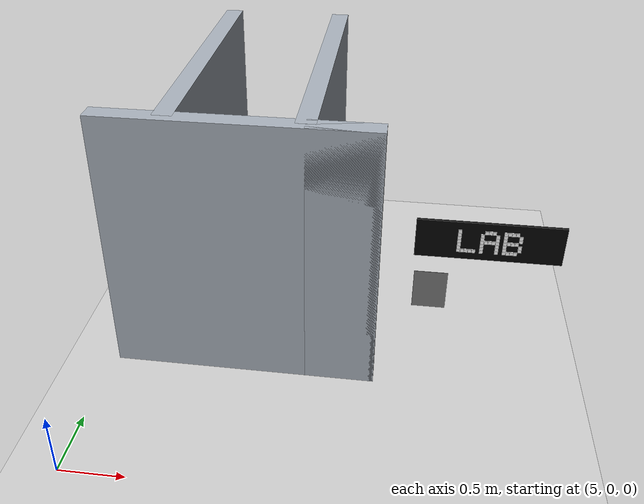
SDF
<sdf version="1.9">
 <world name="default">
  <model name="ground_plane">
   <static>true</static>
   <pose>4.95 0 -0.05 0 0 0</pose>
   <link name="body">
    <collision name="collision"><geometry><box><size>13.9 12 0.1</size></box></geometry></collision>
    <visual name="visual">
     <geometry><box><size>13.9 12 0.1</size></box></geometry>
     <material><ambient>0.8 0.8 0.8 1</ambient><diffuse>0.8 0.8 0.8 1</diffuse></material>
    </visual>
   </link>
  </model>
  <model name="room_1_1_1">
   <static>true</static>
   <pose>5.6 2.45 1.1 0 0 0</pose>
   <link name="body">
    <collision name="collision"><geometry><box><size>0.15 2.4 2.2</size></box></geometry></collision>
    <visual name="visual">
     <geometry><box><size>0.15 2.4 2.2</size></box></geometry>
     <material><ambient>0.65 0.68 0.72 1</ambient><diffuse>0.65 0.68 0.72 1</diffuse></material>
    </visual>
   </link>
  </model>
  <model name="hall_1_2">
   <static>true</static>
   <pose>6.1 1.25 1.1 0 0 0</pose>
   <link name="body">
    <collision name="collision">
     <geometry><box><size>2.1000000000000005 0.15 2.2</size></box></geometry>
    </collision>
    <visual name="visual">
     <geometry><box><size>2.1000000000000005 0.15 2.2</size></box></geometry>
     <material><ambient>0.65 0.68 0.72 1</ambient><diffuse>0.65 0.68 0.72 1</diffuse></material>
    </visual>
   </link>
  </model>
  <model name="room_1_2_-1">
   <static>true</static>
   <pose>6.6000000000000005 2.45 1.1 0 0 0</pose>
   <link name="body">
    <collision name="collision"><geometry><box><size>0.15 2.4 2.2</size></box></geometry></collision>
    <visual name="visual">
     <geometry><box><size>0.15 2.4 2.2</size></box></geometry>
     <material><ambient>0.65 0.68 0.72 1</ambient><diffuse>0.65 0.68 0.72 1</diffuse></material>
    </visual>
   </link>
  </model>
  <model name="jamb_1_2_-1">
   <static>true</static>
   <pose>6.875 1.25 1.1 0 0 0</pose>
   <link name="body">
    <collision name="collision"><geometry><box><size>0.55 0.15 2.2</size></box></geometry></collision>
    <visual name="visual">
     <geometry><box><size>0.55 0.15 2.2</size></box></geometry>
     <material><ambient>0.65 0.68 0.72 1</ambient><diffuse>0.65 0.68 0.72 1</diffuse></material>
    </visual>
   </link>
  </model>
  <model name="readable_r3geo_base_r002_left_2_entrance_corridor">
   <static>true</static>
   <pose>7.9 1.15 1.43 0 0 0</pose>
   <link name="lettering">
    <visual name="backboard">
     <geometry><box><size>1.02 0.018 0.3</size></box></geometry>
     <material>
      <ambient>.015 .015 .015 1</ambient>
      <diffuse>.015 .015 .015 1</diffuse>
      <emissive>.015 .015 .015 1</emissive>
     </material>
     <cast_shadows>false</cast_shadows>
    </visual>
    <visual name="letter_0_0_0">
     <pose>-0.208 -0.014 0.078 0 0 0</pose>
     <geometry><box><size>0.024439999999999996 0.008 0.024439999999999996</size></box></geometry>
     <material>
      <ambient>.96 .96 .96 1</ambient>
      <diffuse>.96 .96 .96 1</diffuse>
      <emissive>.96 .96 .96 1</emissive>
     </material>
     <cast_shadows>false</cast_shadows>
    </visual>
    <visual name="letter_0_1_0">
     <pose>-0.208 -0.014 0.052 0 0 0</pose>
     <geometry><box><size>0.024439999999999996 0.008 0.024439999999999996</size></box></geometry>
     <material>
      <ambient>.96 .96 .96 1</ambient>
      <diffuse>.96 .96 .96 1</diffuse>
      <emissive>.96 .96 .96 1</emissive>
     </material>
     <cast_shadows>false</cast_shadows>
    </visual>
    <visual name="letter_0_2_0">
     <pose>-0.208 -0.014 0.026 0 0 0</pose>
     <geometry><box><size>0.024439999999999996 0.008 0.024439999999999996</size></box></geometry>
     <material>
      <ambient>.96 .96 .96 1</ambient>
      <diffuse>.96 .96 .96 1</diffuse>
      <emissive>.96 .96 .96 1</emissive>
     </material>
     <cast_shadows>false</cast_shadows>
    </visual>
    <visual name="letter_0_3_0">
     <pose>-0.208 -0.014 0 0 0 0</pose>
     <geometry><box><size>0.024439999999999996 0.008 0.024439999999999996</size></box></geometry>
     <material>
      <ambient>.96 .96 .96 1</ambient>
      <diffuse>.96 .96 .96 1</diffuse>
      <emissive>.96 .96 .96 1</emissive>
     </material>
     <cast_shadows>false</cast_shadows>
    </visual>
    <visual name="letter_0_4_0">
     <pose>-0.208 -0.014 -0.026 0 0 0</pose>
     <geometry><box><size>0.024439999999999996 0.008 0.024439999999999996</size></box></geometry>
     <material>
      <ambient>.96 .96 .96 1</ambient>
      <diffuse>.96 .96 .96 1</diffuse>
      <emissive>.96 .96 .96 1</emissive>
     </material>
     <cast_shadows>false</cast_shadows>
    </visual>
    <visual name="letter_0_5_0">
     <pose>-0.208 -0.014 -0.052 0 0 0</pose>
     <geometry><box><size>0.024439999999999996 0.008 0.024439999999999996</size></box></geometry>
     <material>
      <ambient>.96 .96 .96 1</ambient>
      <diffuse>.96 .96 .96 1</diffuse>
      <emissive>.96 .96 .96 1</emissive>
     </material>
     <cast_shadows>false</cast_shadows>
    </visual>
    <visual name="letter_0_6_0">
     <pose>-0.208 -0.014 -0.078 0 0 0</pose>
     <geometry><box><size>0.024439999999999996 0.008 0.024439999999999996</size></box></geometry>
     <material>
      <ambient>.96 .96 .96 1</ambient>
      <diffuse>.96 .96 .96 1</diffuse>
      <emissive>.96 .96 .96 1</emissive>
     </material>
     <cast_shadows>false</cast_shadows>
    </visual>
    <visual name="letter_0_6_1">
     <pose>-0.182 -0.014 -0.078 0 0 0</pose>
     <geometry><box><size>0.024439999999999996 0.008 0.024439999999999996</size></box></geometry>
     <material>
      <ambient>.96 .96 .96 1</ambient>
      <diffuse>.96 .96 .96 1</diffuse>
      <emissive>.96 .96 .96 1</emissive>
     </material>
     <cast_shadows>false</cast_shadows>
    </visual>
    <visual name="letter_0_6_2">
     <pose>-0.156 -0.014 -0.078 0 0 0</pose>
     <geometry><box><size>0.024439999999999996 0.008 0.024439999999999996</size></box></geometry>
     <material>
      <ambient>.96 .96 .96 1</ambient>
      <diffuse>.96 .96 .96 1</diffuse>
      <emissive>.96 .96 .96 1</emissive>
     </material>
     <cast_shadows>false</cast_shadows>
    </visual>
    <visual name="letter_0_6_3">
     <pose>-0.13 -0.014 -0.078 0 0 0</pose>
     <geometry><box><size>0.024439999999999996 0.008 0.024439999999999996</size></box></geometry>
     <material>
      <ambient>.96 .96 .96 1</ambient>
      <diffuse>.96 .96 .96 1</diffuse>
      <emissive>.96 .96 .96 1</emissive>
     </material>
     <cast_shadows>false</cast_shadows>
    </visual>
    <visual name="letter_0_6_4">
     <pose>-0.104 -0.014 -0.078 0 0 0</pose>
     <geometry><box><size>0.024439999999999996 0.008 0.024439999999999996</size></box></geometry>
     <material>
      <ambient>.96 .96 .96 1</ambient>
      <diffuse>.96 .96 .96 1</diffuse>
      <emissive>.96 .96 .96 1</emissive>
     </material>
     <cast_shadows>false</cast_shadows>
    </visual>
    <visual name="letter_1_0_1">
     <pose>-0.026 -0.014 0.078 0 0 0</pose>
     <geometry><box><size>0.024439999999999996 0.008 0.024439999999999996</size></box></geometry>
     <material>
      <ambient>.96 .96 .96 1</ambient>
      <diffuse>.96 .96 .96 1</diffuse>
      <emissive>.96 .96 .96 1</emissive>
     </material>
     <cast_shadows>false</cast_shadows>
    </visual>
    <visual name="letter_1_0_2">
     <pose>0 -0.014 0.078 0 0 0</pose>
     <geometry><box><size>0.024439999999999996 0.008 0.024439999999999996</size></box></geometry>
     <material>
      <ambient>.96 .96 .96 1</ambient>
      <diffuse>.96 .96 .96 1</diffuse>
      <emissive>.96 .96 .96 1</emissive>
     </material>
     <cast_shadows>false</cast_shadows>
    </visual>
    <visual name="letter_1_0_3">
     <pose>0.026 -0.014 0.078 0 0 0</pose>
     <geometry><box><size>0.024439999999999996 0.008 0.024439999999999996</size></box></geometry>
     <material>
      <ambient>.96 .96 .96 1</ambient>
      <diffuse>.96 .96 .96 1</diffuse>
      <emissive>.96 .96 .96 1</emissive>
     </material>
     <cast_shadows>false</cast_shadows>
    </visual>
    <visual name="letter_1_1_0">
     <pose>-0.052 -0.014 0.052 0 0 0</pose>
     <geometry><box><size>0.024439999999999996 0.008 0.024439999999999996</size></box></geometry>
     <material>
      <ambient>.96 .96 .96 1</ambient>
      <diffuse>.96 .96 .96 1</diffuse>
      <emissive>.96 .96 .96 1</emissive>
     </material>
     <cast_shadows>false</cast_shadows>
    </visual>
    <visual name="letter_1_1_4">
     <pose>0.052 -0.014 0.052 0 0 0</pose>
     <geometry><box><size>0.024439999999999996 0.008 0.024439999999999996</size></box></geometry>
     <material>
      <ambient>.96 .96 .96 1</ambient>
      <diffuse>.96 .96 .96 1</diffuse>
      <emissive>.96 .96 .96 1</emissive>
     </material>
     <cast_shadows>false</cast_shadows>
    </visual>
    <visual name="letter_1_2_0">
     <pose>-0.052 -0.014 0.026 0 0 0</pose>
     <geometry><box><size>0.024439999999999996 0.008 0.024439999999999996</size></box></geometry>
     <material>
      <ambient>.96 .96 .96 1</ambient>
      <diffuse>.96 .96 .96 1</diffuse>
      <emissive>.96 .96 .96 1</emissive>
     </material>
     <cast_shadows>false</cast_shadows>
    </visual>
    <visual name="letter_1_2_4">
     <pose>0.052 -0.014 0.026 0 0 0</pose>
     <geometry><box><size>0.024439999999999996 0.008 0.024439999999999996</size></box></geometry>
     <material>
      <ambient>.96 .96 .96 1</ambient>
      <diffuse>.96 .96 .96 1</diffuse>
      <emissive>.96 .96 .96 1</emissive>
     </material>
     <cast_shadows>false</cast_shadows>
    </visual>
    <visual name="letter_1_3_0">
     <pose>-0.052 -0.014 0 0 0 0</pose>
     <geometry><box><size>0.024439999999999996 0.008 0.024439999999999996</size></box></geometry>
     <material>
      <ambient>.96 .96 .96 1</ambient>
      <diffuse>.96 .96 .96 1</diffuse>
      <emissive>.96 .96 .96 1</emissive>
     </material>
     <cast_shadows>false</cast_shadows>
    </visual>
    <visual name="letter_1_3_1">
     <pose>-0.026 -0.014 0 0 0 0</pose>
     <geometry><box><size>0.024439999999999996 0.008 0.024439999999999996</size></box></geometry>
     <material>
      <ambient>.96 .96 .96 1</ambient>
      <diffuse>.96 .96 .96 1</diffuse>
      <emissive>.96 .96 .96 1</emissive>
     </material>
     <cast_shadows>false</cast_shadows>
    </visual>
    <visual name="letter_1_3_2">
     <pose>0 -0.014 0 0 0 0</pose>
     <geometry><box><size>0.024439999999999996 0.008 0.024439999999999996</size></box></geometry>
     <material>
      <ambient>.96 .96 .96 1</ambient>
      <diffuse>.96 .96 .96 1</diffuse>
      <emissive>.96 .96 .96 1</emissive>
     </material>
     <cast_shadows>false</cast_shadows>
    </visual>
    <visual name="letter_1_3_3">
     <pose>0.026 -0.014 0 0 0 0</pose>
     <geometry><box><size>0.024439999999999996 0.008 0.024439999999999996</size></box></geometry>
     <material>
      <ambient>.96 .96 .96 1</ambient>
      <diffuse>.96 .96 .96 1</diffuse>
      <emissive>.96 .96 .96 1</emissive>
     </material>
     <cast_shadows>false</cast_shadows>
    </visual>
    <visual name="letter_1_3_4">
     <pose>0.052 -0.014 0 0 0 0</pose>
     <geometry><box><size>0.024439999999999996 0.008 0.024439999999999996</size></box></geometry>
     <material>
      <ambient>.96 .96 .96 1</ambient>
      <diffuse>.96 .96 .96 1</diffuse>
      <emissive>.96 .96 .96 1</emissive>
     </material>
     <cast_shadows>false</cast_shadows>
    </visual>
    <visual name="letter_1_4_0">
     <pose>-0.052 -0.014 -0.026 0 0 0</pose>
     <geometry><box><size>0.024439999999999996 0.008 0.024439999999999996</size></box></geometry>
     <material>
      <ambient>.96 .96 .96 1</ambient>
      <diffuse>.96 .96 .96 1</diffuse>
      <emissive>.96 .96 .96 1</emissive>
     </material>
     <cast_shadows>false</cast_shadows>
    </visual>
    <visual name="letter_1_4_4">
     <pose>0.052 -0.014 -0.026 0 0 0</pose>
     <geometry><box><size>0.024439999999999996 0.008 0.024439999999999996</size></box></geometry>
     <material>
      <ambient>.96 .96 .96 1</ambient>
      <diffuse>.96 .96 .96 1</diffuse>
      <emissive>.96 .96 .96 1</emissive>
     </material>
     <cast_shadows>false</cast_shadows>
    </visual>
    <visual name="letter_1_5_0">
     <pose>-0.052 -0.014 -0.052 0 0 0</pose>
     <geometry><box><size>0.024439999999999996 0.008 0.024439999999999996</size></box></geometry>
     <material>
      <ambient>.96 .96 .96 1</ambient>
      <diffuse>.96 .96 .96 1</diffuse>
      <emissive>.96 .96 .96 1</emissive>
     </material>
     <cast_shadows>false</cast_shadows>
    </visual>
    <visual name="letter_1_5_4">
     <pose>0.052 -0.014 -0.052 0 0 0</pose>
     <geometry><box><size>0.024439999999999996 0.008 0.024439999999999996</size></box></geometry>
     <material>
      <ambient>.96 .96 .96 1</ambient>
      <diffuse>.96 .96 .96 1</diffuse>
      <emissive>.96 .96 .96 1</emissive>
     </material>
     <cast_shadows>false</cast_shadows>
    </visual>
    <visual name="letter_1_6_0">
     <pose>-0.052 -0.014 -0.078 0 0 0</pose>
     <geometry><box><size>0.024439999999999996 0.008 0.024439999999999996</size></box></geometry>
     <material>
      <ambient>.96 .96 .96 1</ambient>
      <diffuse>.96 .96 .96 1</diffuse>
      <emissive>.96 .96 .96 1</emissive>
     </material>
     <cast_shadows>false</cast_shadows>
    </visual>
    <visual name="letter_1_6_4">
     <pose>0.052 -0.014 -0.078 0 0 0</pose>
     <geometry><box><size>0.024439999999999996 0.008 0.024439999999999996</size></box></geometry>
     <material>
      <ambient>.96 .96 .96 1</ambient>
      <diffuse>.96 .96 .96 1</diffuse>
      <emissive>.96 .96 .96 1</emissive>
     </material>
     <cast_shadows>false</cast_shadows>
    </visual>
    <visual name="letter_2_0_0">
     <pose>0.104 -0.014 0.078 0 0 0</pose>
     <geometry><box><size>0.024439999999999996 0.008 0.024439999999999996</size></box></geometry>
     <material>
      <ambient>.96 .96 .96 1</ambient>
      <diffuse>.96 .96 .96 1</diffuse>
      <emissive>.96 .96 .96 1</emissive>
     </material>
     <cast_shadows>false</cast_shadows>
    </visual>
    <visual name="letter_2_0_1">
     <pose>0.13 -0.014 0.078 0 0 0</pose>
     <geometry><box><size>0.024439999999999996 0.008 0.024439999999999996</size></box></geometry>
     <material>
      <ambient>.96 .96 .96 1</ambient>
      <diffuse>.96 .96 .96 1</diffuse>
      <emissive>.96 .96 .96 1</emissive>
     </material>
     <cast_shadows>false</cast_shadows>
    </visual>
    <visual name="letter_2_0_2">
     <pose>0.156 -0.014 0.078 0 0 0</pose>
     <geometry><box><size>0.024439999999999996 0.008 0.024439999999999996</size></box></geometry>
     <material>
      <ambient>.96 .96 .96 1</ambient>
      <diffuse>.96 .96 .96 1</diffuse>
      <emissive>.96 .96 .96 1</emissive>
     </material>
     <cast_shadows>false</cast_shadows>
    </visual>
    <visual name="letter_2_0_3">
     <pose>0.182 -0.014 0.078 0 0 0</pose>
     <geometry><box><size>0.024439999999999996 0.008 0.024439999999999996</size></box></geometry>
     <material>
      <ambient>.96 .96 .96 1</ambient>
      <diffuse>.96 .96 .96 1</diffuse>
      <emissive>.96 .96 .96 1</emissive>
     </material>
     <cast_shadows>false</cast_shadows>
    </visual>
    <visual name="letter_2_1_0">
     <pose>0.104 -0.014 0.052 0 0 0</pose>
     <geometry><box><size>0.024439999999999996 0.008 0.024439999999999996</size></box></geometry>
     <material>
      <ambient>.96 .96 .96 1</ambient>
      <diffuse>.96 .96 .96 1</diffuse>
      <emissive>.96 .96 .96 1</emissive>
     </material>
     <cast_shadows>false</cast_shadows>
    </visual>
    <visual name="letter_2_1_4">
     <pose>0.208 -0.014 0.052 0 0 0</pose>
     <geometry><box><size>0.024439999999999996 0.008 0.024439999999999996</size></box></geometry>
     <material>
      <ambient>.96 .96 .96 1</ambient>
      <diffuse>.96 .96 .96 1</diffuse>
      <emissive>.96 .96 .96 1</emissive>
     </material>
     <cast_shadows>false</cast_shadows>
    </visual>
    <visual name="letter_2_2_0">
     <pose>0.104 -0.014 0.026 0 0 0</pose>
     <geometry><box><size>0.024439999999999996 0.008 0.024439999999999996</size></box></geometry>
     <material>
      <ambient>.96 .96 .96 1</ambient>
      <diffuse>.96 .96 .96 1</diffuse>
      <emissive>.96 .96 .96 1</emissive>
     </material>
     <cast_shadows>false</cast_shadows>
    </visual>
    <visual name="letter_2_2_4">
     <pose>0.208 -0.014 0.026 0 0 0</pose>
     <geometry><box><size>0.024439999999999996 0.008 0.024439999999999996</size></box></geometry>
     <material>
      <ambient>.96 .96 .96 1</ambient>
      <diffuse>.96 .96 .96 1</diffuse>
      <emissive>.96 .96 .96 1</emissive>
     </material>
     <cast_shadows>false</cast_shadows>
    </visual>
    <visual name="letter_2_3_0">
     <pose>0.104 -0.014 0 0 0 0</pose>
     <geometry><box><size>0.024439999999999996 0.008 0.024439999999999996</size></box></geometry>
     <material>
      <ambient>.96 .96 .96 1</ambient>
      <diffuse>.96 .96 .96 1</diffuse>
      <emissive>.96 .96 .96 1</emissive>
     </material>
     <cast_shadows>false</cast_shadows>
    </visual>
    <visual name="letter_2_3_1">
     <pose>0.13 -0.014 0 0 0 0</pose>
     <geometry><box><size>0.024439999999999996 0.008 0.024439999999999996</size></box></geometry>
     <material>
      <ambient>.96 .96 .96 1</ambient>
      <diffuse>.96 .96 .96 1</diffuse>
      <emissive>.96 .96 .96 1</emissive>
     </material>
     <cast_shadows>false</cast_shadows>
    </visual>
    <visual name="letter_2_3_2">
     <pose>0.156 -0.014 0 0 0 0</pose>
     <geometry><box><size>0.024439999999999996 0.008 0.024439999999999996</size></box></geometry>
     <material>
      <ambient>.96 .96 .96 1</ambient>
      <diffuse>.96 .96 .96 1</diffuse>
      <emissive>.96 .96 .96 1</emissive>
     </material>
     <cast_shadows>false</cast_shadows>
    </visual>
    <visual name="letter_2_3_3">
     <pose>0.182 -0.014 0 0 0 0</pose>
     <geometry><box><size>0.024439999999999996 0.008 0.024439999999999996</size></box></geometry>
     <material>
      <ambient>.96 .96 .96 1</ambient>
      <diffuse>.96 .96 .96 1</diffuse>
      <emissive>.96 .96 .96 1</emissive>
     </material>
     <cast_shadows>false</cast_shadows>
    </visual>
    <visual name="letter_2_4_0">
     <pose>0.104 -0.014 -0.026 0 0 0</pose>
     <geometry><box><size>0.024439999999999996 0.008 0.024439999999999996</size></box></geometry>
     <material>
      <ambient>.96 .96 .96 1</ambient>
      <diffuse>.96 .96 .96 1</diffuse>
      <emissive>.96 .96 .96 1</emissive>
     </material>
     <cast_shadows>false</cast_shadows>
    </visual>
    <visual name="letter_2_4_4">
     <pose>0.208 -0.014 -0.026 0 0 0</pose>
     <geometry><box><size>0.024439999999999996 0.008 0.024439999999999996</size></box></geometry>
     <material>
      <ambient>.96 .96 .96 1</ambient>
      <diffuse>.96 .96 .96 1</diffuse>
      <emissive>.96 .96 .96 1</emissive>
     </material>
     <cast_shadows>false</cast_shadows>
    </visual>
    <visual name="letter_2_5_0">
     <pose>0.104 -0.014 -0.052 0 0 0</pose>
     <geometry><box><size>0.024439999999999996 0.008 0.024439999999999996</size></box></geometry>
     <material>
      <ambient>.96 .96 .96 1</ambient>
      <diffuse>.96 .96 .96 1</diffuse>
      <emissive>.96 .96 .96 1</emissive>
     </material>
     <cast_shadows>false</cast_shadows>
    </visual>
    <visual name="letter_2_5_4">
     <pose>0.208 -0.014 -0.052 0 0 0</pose>
     <geometry><box><size>0.024439999999999996 0.008 0.024439999999999996</size></box></geometry>
     <material>
      <ambient>.96 .96 .96 1</ambient>
      <diffuse>.96 .96 .96 1</diffuse>
      <emissive>.96 .96 .96 1</emissive>
     </material>
     <cast_shadows>false</cast_shadows>
    </visual>
    <visual name="letter_2_6_0">
     <pose>0.104 -0.014 -0.078 0 0 0</pose>
     <geometry><box><size>0.024439999999999996 0.008 0.024439999999999996</size></box></geometry>
     <material>
      <ambient>.96 .96 .96 1</ambient>
      <diffuse>.96 .96 .96 1</diffuse>
      <emissive>.96 .96 .96 1</emissive>
     </material>
     <cast_shadows>false</cast_shadows>
    </visual>
    <visual name="letter_2_6_1">
     <pose>0.13 -0.014 -0.078 0 0 0</pose>
     <geometry><box><size>0.024439999999999996 0.008 0.024439999999999996</size></box></geometry>
     <material>
      <ambient>.96 .96 .96 1</ambient>
      <diffuse>.96 .96 .96 1</diffuse>
      <emissive>.96 .96 .96 1</emissive>
     </material>
     <cast_shadows>false</cast_shadows>
    </visual>
    <visual name="letter_2_6_2">
     <pose>0.156 -0.014 -0.078 0 0 0</pose>
     <geometry><box><size>0.024439999999999996 0.008 0.024439999999999996</size></box></geometry>
     <material>
      <ambient>.96 .96 .96 1</ambient>
      <diffuse>.96 .96 .96 1</diffuse>
      <emissive>.96 .96 .96 1</emissive>
     </material>
     <cast_shadows>false</cast_shadows>
    </visual>
    <visual name="letter_2_6_3">
     <pose>0.182 -0.014 -0.078 0 0 0</pose>
     <geometry><box><size>0.024439999999999996 0.008 0.024439999999999996</size></box></geometry>
     <material>
      <ambient>.96 .96 .96 1</ambient>
      <diffuse>.96 .96 .96 1</diffuse>
      <emissive>.96 .96 .96 1</emissive>
     </material>
     <cast_shadows>false</cast_shadows>
    </visual>
   </link>
  </model>
  <model name="expansion_occluder_r3geo_base_r002_left_2_doorway">
   <static>true</static>
   <pose>7.494187547305411 0.6599215045474033 1.3482961348111242 -1.57 -1.5932350924674488e-16 0.0007963267948962998</pose>
   <link name="visual_only">
    <visual name="neutral_occluder">
     <geometry><box><size>0.2154038966924378 0.2782887733184614 0.002</size></box></geometry>
     <material><ambient>.45 .45 .45 1</ambient><diffuse>.45 .45 .45 1</diffuse></material>
     <cast_shadows>false</cast_shadows>
    </visual>
   </link>
  </model>
 </world>
</sdf>
